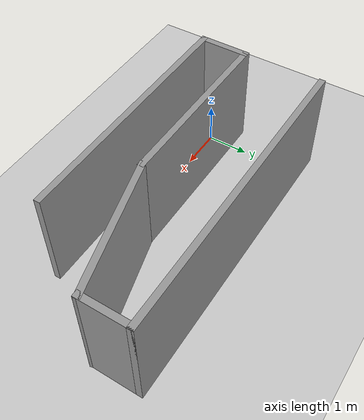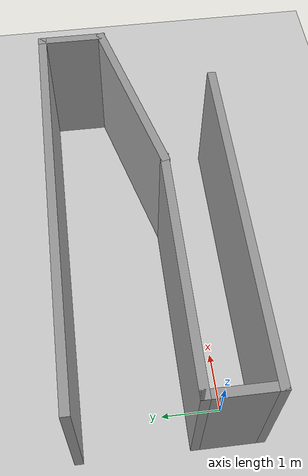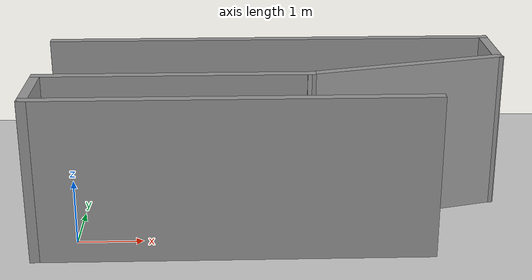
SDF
<sdf version="1.7">
 <world name="default">
  <light name="sun" type="directional">
   <pose>0 0 10 0 -0 0</pose>
   <diffuse>0.8 0.8 0.8 1</diffuse>
   <specular>0.2 0.2 0.2 1</specular>
   <attenuation>
    <range>1000</range>
    <constant>0.9</constant>
    <linear>0.01</linear>
    <quadratic>0.001</quadratic>
   </attenuation>
   <direction>-0.5 0.1 -0.9</direction>
   <spot><inner_angle>0</inner_angle><outer_angle>0</outer_angle><falloff>0</falloff></spot>
  </light>
  <model name="ground_plane">
   <static>1</static>
   <link name="link">
    <collision name="collision">
     <geometry><plane><normal>0 0 1</normal><size>100 100</size></plane></geometry>
     <surface>
      <contact><collide_bitmask>65535</collide_bitmask></contact>
      <friction><ode><mu>100</mu><mu2>50</mu2></ode></friction>
     </surface>
    </collision>
    <visual name="visual">
     <cast_shadows>0</cast_shadows>
     <geometry><plane><normal>0 0 1</normal><size>100 100</size></plane></geometry>
     <material>
      <script><uri>file://media/materials/scripts/gazebo.material</uri><name>Gazebo/Grey</name></script>
     </material>
    </visual>
   </link>
  </model>
  <gravity>0 0 -9.8</gravity>
  <magnetic_field>6e-06 2.3e-05 -4.2e-05</magnetic_field>
  <atmosphere type="adiabatic"/>
  <physics type="ode">
   <max_step_size>0.001</max_step_size>
   <real_time_factor>1</real_time_factor>
   <real_time_update_rate>1000</real_time_update_rate>
  </physics>
  <scene><ambient>0.4 0.4 0.4 1</ambient><background>0.7 0.7 0.7 1</background><shadows>1</shadows></scene>
  <spherical_coordinates>
   <surface_model>EARTH_WGS84</surface_model>
   <latitude_deg>0</latitude_deg>
   <longitude_deg>0</longitude_deg>
   <elevation>0</elevation>
   <heading_deg>0</heading_deg>
  </spherical_coordinates>
  <model name="myworld_model">
   <pose>0.142255 1.13598 0 0 -0 1.56652</pose>
   <link name="Wall_3">
    <collision name="Wall_3_Collision">
     <geometry><box><size>6 0.15 2.5</size></box></geometry>
     <pose>0 0 1.25 0 -0 0</pose>
    </collision>
    <visual name="Wall_3_Visual">
     <pose>0 0 1.25 0 -0 0</pose>
     <geometry><box><size>6 0.15 2.5</size></box></geometry>
     <material>
      <script><uri>file://media/materials/scripts/gazebo.material</uri><name>Gazebo/Grey</name></script>
      <ambient>1 1 1 1</ambient>
     </material>
     <meta><layer>0</layer></meta>
    </visual>
    <pose>-1.71095 -2.24813 0 0 -0 -1.5708</pose>
   </link>
   <link name="Wall_5">
    <collision name="Wall_5_Collision">
     <geometry><box><size>1.25 0.15 2.5</size></box></geometry>
     <pose>0 0 1.25 0 -0 0</pose>
    </collision>
    <visual name="Wall_5_Visual">
     <pose>0 0 1.25 0 -0 0</pose>
     <geometry><box><size>1.25 0.15 2.5</size></box></geometry>
     <material>
      <script><uri>file://media/materials/scripts/gazebo.material</uri><name>Gazebo/Grey</name></script>
      <ambient>1 1 1 1</ambient>
     </material>
     <meta><layer>0</layer></meta>
    </visual>
    <pose>-1.16095 0.676868 0 0 -0 0</pose>
   </link>
   <link name="Wall_6">
    <collision name="Wall_6_Collision">
     <geometry><box><size>4.25 0.15 2.5</size></box></geometry>
     <pose>0 0 1.25 0 -0 0</pose>
    </collision>
    <visual name="Wall_6_Visual">
     <pose>0 0 1.25 0 -0 0</pose>
     <geometry><box><size>4.25 0.15 2.5</size></box></geometry>
     <material>
      <script><uri>file://media/materials/scripts/gazebo.material</uri><name>Gazebo/Grey</name></script>
      <ambient>1 1 1 1</ambient>
     </material>
     <meta><layer>0</layer></meta>
    </visual>
    <pose>-0.610946 -1.37313 0 0 -0 -1.5708</pose>
   </link>
   <link name="Wall_7">
    <collision name="Wall_7_Collision">
     <geometry><box><size>3.25 0.15 2.5</size></box></geometry>
     <pose>0 0 1.25 0 -0 0</pose>
    </collision>
    <visual name="Wall_7_Visual">
     <pose>0 0 1.25 0 -0 0</pose>
     <geometry><box><size>3.25 0.15 2.5</size></box></geometry>
     <material>
      <script><uri>file://media/materials/scripts/gazebo.material</uri><name>Gazebo/Grey</name></script>
      <ambient>1 1 1 1</ambient>
     </material>
     <meta><layer>0</layer></meta>
    </visual>
    <pose>-0.209777 -4.92032 0 0 -0 -1.309</pose>
   </link>
   <link name="Wall_8">
    <collision name="Wall_8_Collision">
     <geometry><box><size>1.25 0.15 2.5</size></box></geometry>
     <pose>0 0 1.25 0 -0 0</pose>
    </collision>
    <visual name="Wall_8_Visual">
     <pose>0 0 1.25 0 -0 0</pose>
     <geometry><box><size>1.25 0.15 2.5</size></box></geometry>
     <material>
      <script><uri>file://media/materials/scripts/gazebo.material</uri><name>Gazebo/Grey</name></script>
      <ambient>1 1 1 1</ambient>
     </material>
     <meta><layer>0</layer></meta>
    </visual>
    <pose>0.741393 -6.4175 0 0 -0 0</pose>
   </link>
   <link name="Wall_9">
    <collision name="Wall_9_Collision">
     <geometry><box><size>7.25 0.15 2.5</size></box></geometry>
     <pose>0 0 1.25 0 -0 0</pose>
    </collision>
    <visual name="Wall_9_Visual">
     <pose>0 0 1.25 0 -0 0</pose>
     <geometry><box><size>7.25 0.15 2.5</size></box></geometry>
     <material>
      <script><uri>file://media/materials/scripts/gazebo.material</uri><name>Gazebo/Grey</name></script>
      <ambient>1 1 1 1</ambient>
     </material>
     <meta><layer>0</layer></meta>
    </visual>
    <pose>1.29139 -2.8675 0 0 -0 1.5708</pose>
   </link>
   <static>1</static>
  </model>
 </world>
</sdf>
